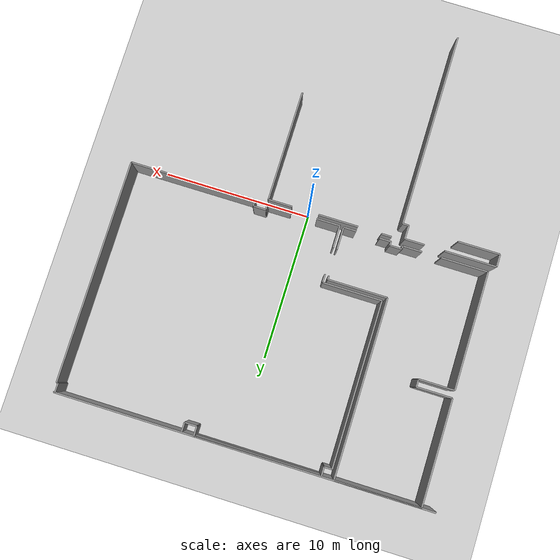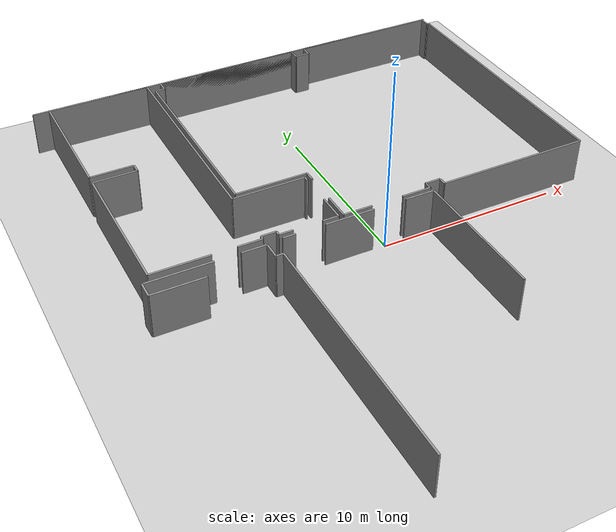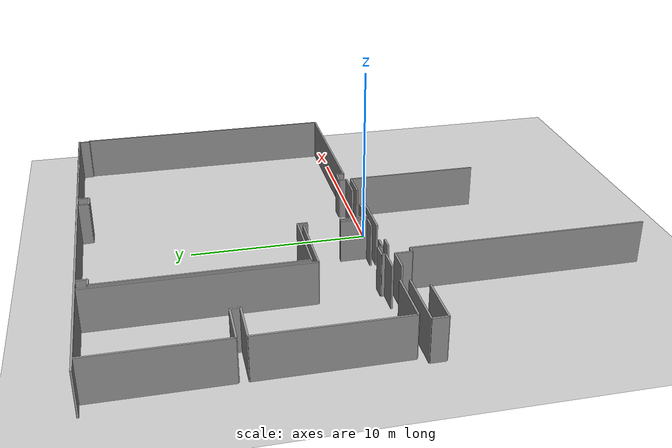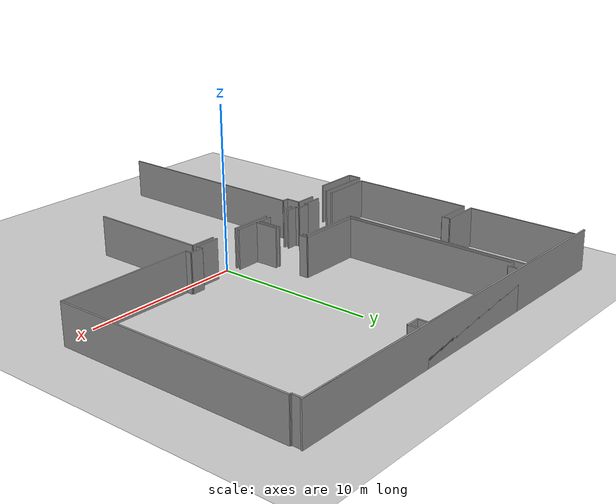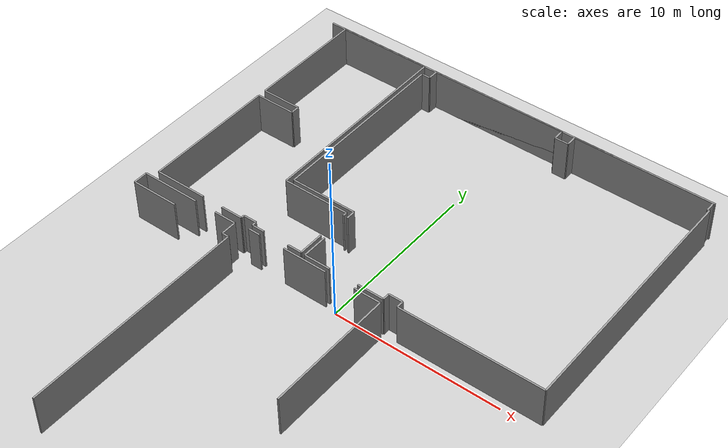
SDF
<sdf version="1.6">
 <world name="default">
  <model name="ground_plane">
   <static>1</static>
   <link name="link">
    <collision name="collision">
     <geometry><plane><normal>0 0 1</normal><size>100 100</size></plane></geometry>
     <surface><friction><ode><mu>100</mu><mu2>50</mu2></ode></friction></surface>
    </collision>
    <visual name="visual">
     <cast_shadows>0</cast_shadows>
     <geometry><plane><normal>0 0 1</normal><size>100 100</size></plane></geometry>
     <material>
      <script><uri>file://media/materials/scripts/gazebo.material</uri><name>Gazebo/Grey</name></script>
     </material>
    </visual>
   </link>
  </model>
  <model name="50045365">
   <static>1</static>
   <link name="Wall_0">
    <collision name="Wall_0_Collision">
     <geometry><box><size>7.93266301036 0.1 2.5</size></box></geometry>
     <pose>3.96633150518 0 1.25 0 0 0</pose>
    </collision>
    <visual name="Wall_0_Visual">
     <pose>3.96633150518 0 1.25 0 0 0</pose>
     <geometry><box><size>7.93266301036 0.1 2.5</size></box></geometry>
     <material>
      <script><uri>file://media/materials/scripts/gazebo.material</uri><name>Gazebo/Grey</name></script>
      <ambient>1 1 1 1</ambient>
     </material>
    </visual>
    <pose>0.938452163315 -15.5547938249 0 0 0 1.57079632679</pose>
   </link>
   <link name="Wall_1">
    <collision name="Wall_1_Collision">
     <geometry><box><size>2.3946272598 0.1 2.5</size></box></geometry>
     <pose>1.1973136299 0 1.25 0 0 0</pose>
    </collision>
    <visual name="Wall_1_Visual">
     <pose>1.1973136299 0 1.25 0 0 0</pose>
     <geometry><box><size>2.3946272598 0.1 2.5</size></box></geometry>
     <material>
      <script><uri>file://media/materials/scripts/gazebo.material</uri><name>Gazebo/Grey</name></script>
      <ambient>1 1 1 1</ambient>
     </material>
    </visual>
    <pose>0.938452163315 -7.62213081454 0 0 0 0.0</pose>
   </link>
   <link name="Wall_2">
    <collision name="Wall_2_Collision">
     <geometry><box><size>0.518357708714 0.1 2.5</size></box></geometry>
     <pose>0.259178854357 0 1.25 0 0 0</pose>
    </collision>
    <visual name="Wall_2_Visual">
     <pose>0.259178854357 0 1.25 0 0 0</pose>
     <geometry><box><size>0.518357708714 0.1 2.5</size></box></geometry>
     <material>
      <script><uri>file://media/materials/scripts/gazebo.material</uri><name>Gazebo/Grey</name></script>
      <ambient>1 1 1 1</ambient>
     </material>
    </visual>
    <pose>3.33307942312 -7.62213081454 0 0 0 1.57079632679</pose>
   </link>
   <link name="Wall_3">
    <collision name="Wall_3_Collision">
     <geometry><box><size>2.39031078611 0.1 2.5</size></box></geometry>
     <pose>1.19515539305 0 1.25 0 0 0</pose>
    </collision>
    <visual name="Wall_3_Visual">
     <pose>1.19515539305 0 1.25 0 0 0</pose>
     <geometry><box><size>2.39031078611 0.1 2.5</size></box></geometry>
     <material>
      <script><uri>file://media/materials/scripts/gazebo.material</uri><name>Gazebo/Grey</name></script>
      <ambient>1 1 1 1</ambient>
     </material>
    </visual>
    <pose>3.33307942312 -7.10377310583 0 0 0 3.14159265359</pose>
   </link>
   <link name="Wall_4">
    <collision name="Wall_4_Collision">
     <geometry><box><size>7.09412451757 0.1 2.5</size></box></geometry>
     <pose>3.54706225879 0 1.25 0 0 0</pose>
    </collision>
    <visual name="Wall_4_Visual">
     <pose>3.54706225879 0 1.25 0 0 0</pose>
     <geometry><box><size>7.09412451757 0.1 2.5</size></box></geometry>
     <material>
      <script><uri>file://media/materials/scripts/gazebo.material</uri><name>Gazebo/Grey</name></script>
      <ambient>1 1 1 1</ambient>
     </material>
    </visual>
    <pose>0.94276863701 -7.10377310583 0 0 0 1.57079632679</pose>
   </link>
   <link name="Wall_5">
    <collision name="Wall_5_Collision">
     <geometry><box><size>5.72135892748 0.1 2.5</size></box></geometry>
     <pose>2.86067946374 0 1.25 0 0 0</pose>
    </collision>
    <visual name="Wall_5_Visual">
     <pose>2.86067946374 0 1.25 0 0 0</pose>
     <geometry><box><size>5.72135892748 0.1 2.5</size></box></geometry>
     <material>
      <script><uri>file://media/materials/scripts/gazebo.material</uri><name>Gazebo/Grey</name></script>
      <ambient>1 1 1 1</ambient>
     </material>
    </visual>
    <pose>0.94276863701 -0.0096485882592 0 0 0 0.0</pose>
   </link>
   <link name="Wall_6">
    <collision name="Wall_6_Collision">
     <geometry><box><size>12.0124923827 0.1 2.5</size></box></geometry>
     <pose>6.00624619135 0 1.25 0 0 0</pose>
    </collision>
    <visual name="Wall_6_Visual">
     <pose>6.00624619135 0 1.25 0 0 0</pose>
     <geometry><box><size>12.0124923827 0.1 2.5</size></box></geometry>
     <material>
      <script><uri>file://media/materials/scripts/gazebo.material</uri><name>Gazebo/Grey</name></script>
      <ambient>1 1 1 1</ambient>
     </material>
    </visual>
    <pose>6.66412756449 -0.0096485882592 0 0 0 -1.57079632679</pose>
   </link>
   <link name="Wall_7">
    <collision name="Wall_7_Collision">
     <geometry><box><size>4.022191753 0.1 2.5</size></box></geometry>
     <pose>2.0110958765 0 1.25 0 0 0</pose>
    </collision>
    <visual name="Wall_7_Visual">
     <pose>2.0110958765 0 1.25 0 0 0</pose>
     <geometry><box><size>4.022191753 0.1 2.5</size></box></geometry>
     <material>
      <script><uri>file://media/materials/scripts/gazebo.material</uri><name>Gazebo/Grey</name></script>
      <ambient>1 1 1 1</ambient>
     </material>
    </visual>
    <pose>6.66412756449 -12.022140971 0 0 0 0.0</pose>
   </link>
   <link name="Wall_8">
    <collision name="Wall_8_Collision">
     <geometry><box><size>0.248451147674 0.1 2.5</size></box></geometry>
     <pose>0.124225573837 0 1.25 0 0 0</pose>
    </collision>
    <visual name="Wall_8_Visual">
     <pose>0.124225573837 0 1.25 0 0 0</pose>
     <geometry><box><size>0.248451147674 0.1 2.5</size></box></geometry>
     <material>
      <script><uri>file://media/materials/scripts/gazebo.material</uri><name>Gazebo/Grey</name></script>
      <ambient>1 1 1 1</ambient>
     </material>
    </visual>
    <pose>10.6863193175 -12.022140971 0 0 0 -1.57079632679</pose>
   </link>
   <link name="Wall_9">
    <collision name="Wall_9_Collision">
     <geometry><box><size>1.52346130408 0.1 2.5</size></box></geometry>
     <pose>0.761730652041 0 1.25 0 0 0</pose>
    </collision>
    <visual name="Wall_9_Visual">
     <pose>0.761730652041 0 1.25 0 0 0</pose>
     <geometry><box><size>1.52346130408 0.1 2.5</size></box></geometry>
     <material>
      <script><uri>file://media/materials/scripts/gazebo.material</uri><name>Gazebo/Grey</name></script>
      <ambient>1 1 1 1</ambient>
     </material>
    </visual>
    <pose>10.6863193175 -14.0826223847 0 0 0 -1.57079632679</pose>
   </link>
   <link name="Wall_10">
    <collision name="Wall_10_Collision">
     <geometry><box><size>0.86139041235 0.1 2.5</size></box></geometry>
     <pose>0.430695206175 0 1.25 0 0 0</pose>
    </collision>
    <visual name="Wall_10_Visual">
     <pose>0.430695206175 0 1.25 0 0 0</pose>
     <geometry><box><size>0.86139041235 0.1 2.5</size></box></geometry>
     <material>
      <script><uri>file://media/materials/scripts/gazebo.material</uri><name>Gazebo/Grey</name></script>
      <ambient>1 1 1 1</ambient>
     </material>
    </visual>
    <pose>10.6863193175 -15.6060836888 0 0 0 3.14159265359</pose>
   </link>
   <link name="Wall_11">
    <collision name="Wall_11_Collision">
     <geometry><box><size>0.749035141174 0.1 2.5</size></box></geometry>
     <pose>0.374517570587 0 1.25 0 0 0</pose>
    </collision>
    <visual name="Wall_11_Visual">
     <pose>0.374517570587 0 1.25 0 0 0</pose>
     <geometry><box><size>0.749035141174 0.1 2.5</size></box></geometry>
     <material>
      <script><uri>file://media/materials/scripts/gazebo.material</uri><name>Gazebo/Grey</name></script>
      <ambient>1 1 1 1</ambient>
     </material>
    </visual>
    <pose>8.23557789965 -15.6060836888 0 0 0 3.14159265359</pose>
   </link>
   <link name="Wall_12">
    <collision name="Wall_12_Collision">
     <geometry><box><size>0.266605728215 0.1 2.5</size></box></geometry>
     <pose>0.133302864107 0 1.25 0 0 0</pose>
    </collision>
    <visual name="Wall_12_Visual">
     <pose>0.133302864107 0 1.25 0 0 0</pose>
     <geometry><box><size>0.266605728215 0.1 2.5</size></box></geometry>
     <material>
      <script><uri>file://media/materials/scripts/gazebo.material</uri><name>Gazebo/Grey</name></script>
      <ambient>1 1 1 1</ambient>
     </material>
    </visual>
    <pose>7.48654275848 -15.6060836888 0 0 0 1.57079632679</pose>
   </link>
   <link name="Wall_13">
    <collision name="Wall_13_Collision">
     <geometry><box><size>0.812512695511 0.1 2.5</size></box></geometry>
     <pose>0.406256347755 0 1.25 0 0 0</pose>
    </collision>
    <visual name="Wall_13_Visual">
     <pose>0.406256347755 0 1.25 0 0 0</pose>
     <geometry><box><size>0.812512695511 0.1 2.5</size></box></geometry>
     <material>
      <script><uri>file://media/materials/scripts/gazebo.material</uri><name>Gazebo/Grey</name></script>
      <ambient>1 1 1 1</ambient>
     </material>
    </visual>
    <pose>7.48654275848 -15.3394779606 0 0 0 3.14159265359</pose>
   </link>
   <link name="Wall_14">
    <collision name="Wall_14_Collision">
     <geometry><box><size>0.215823684745 0.1 2.5</size></box></geometry>
     <pose>0.107911842373 0 1.25 0 0 0</pose>
    </collision>
    <visual name="Wall_14_Visual">
     <pose>0.107911842373 0 1.25 0 0 0</pose>
     <geometry><box><size>0.215823684745 0.1 2.5</size></box></geometry>
     <material>
      <script><uri>file://media/materials/scripts/gazebo.material</uri><name>Gazebo/Grey</name></script>
      <ambient>1 1 1 1</ambient>
     </material>
    </visual>
    <pose>6.67403006297 -15.3394779606 0 0 0 -1.57079632679</pose>
   </link>
   <link name="Wall_15">
    <collision name="Wall_15_Collision">
     <geometry><box><size>1.30763761934 0.1 2.5</size></box></geometry>
     <pose>0.653818809669 0 1.25 0 0 0</pose>
    </collision>
    <visual name="Wall_15_Visual">
     <pose>0.653818809669 0 1.25 0 0 0</pose>
     <geometry><box><size>1.30763761934 0.1 2.5</size></box></geometry>
     <material>
      <script><uri>file://media/materials/scripts/gazebo.material</uri><name>Gazebo/Grey</name></script>
      <ambient>1 1 1 1</ambient>
     </material>
    </visual>
    <pose>6.67403006297 -15.5553016453 0 0 0 3.14159265359</pose>
   </link>
   <link name="Wall_16">
    <collision name="Wall_16_Collision">
     <geometry><box><size>3.132998213 0.1 2.5</size></box></geometry>
     <pose>1.5664991065 0 1.25 0 0 0</pose>
    </collision>
    <visual name="Wall_16_Visual">
     <pose>1.5664991065 0 1.25 0 0 0</pose>
     <geometry><box><size>3.132998213 0.1 2.5</size></box></geometry>
     <material>
      <script><uri>file://media/materials/scripts/gazebo.material</uri><name>Gazebo/Grey</name></script>
      <ambient>1 1 1 1</ambient>
     </material>
    </visual>
    <pose>4.07145033516 -15.5553016453 0 0 0 3.1414305659</pose>
   </link>
   <link name="Wall_17">
    <collision name="Wall_17_Collision">
     <geometry><box><size>1.52346130408 0.1 2.5</size></box></geometry>
     <pose>0.761730652041 0 1.25 0 0 0</pose>
    </collision>
    <visual name="Wall_17_Visual">
     <pose>0.761730652041 0 1.25 0 0 0</pose>
     <geometry><box><size>1.52346130408 0.1 2.5</size></box></geometry>
     <material>
      <script><uri>file://media/materials/scripts/gazebo.material</uri><name>Gazebo/Grey</name></script>
      <ambient>1 1 1 1</ambient>
     </material>
    </visual>
    <pose>10.9524172253 -15.6314747105 0 0 0 1.57079632679</pose>
   </link>
   <link name="Wall_18">
    <collision name="Wall_18_Collision">
     <geometry><box><size>0.554793824904 0.1 2.5</size></box></geometry>
     <pose>0.277396912452 0 1.25 0 0 0</pose>
    </collision>
    <visual name="Wall_18_Visual">
     <pose>0.277396912452 0 1.25 0 0 0</pose>
     <geometry><box><size>0.554793824904 0.1 2.5</size></box></geometry>
     <material>
      <script><uri>file://media/materials/scripts/gazebo.material</uri><name>Gazebo/Grey</name></script>
      <ambient>1 1 1 1</ambient>
     </material>
    </visual>
    <pose>10.9524172253 -12.2957292301 0 0 0 1.57079632679</pose>
   </link>
   <link name="Wall_19">
    <collision name="Wall_19_Collision">
     <geometry><box><size>3.9974355068 0.1 2.5</size></box></geometry>
     <pose>1.9987177534 0 1.25 0 0 0</pose>
    </collision>
    <visual name="Wall_19_Visual">
     <pose>1.9987177534 0 1.25 0 0 0</pose>
     <geometry><box><size>3.9974355068 0.1 2.5</size></box></geometry>
     <material>
      <script><uri>file://media/materials/scripts/gazebo.material</uri><name>Gazebo/Grey</name></script>
      <ambient>1 1 1 1</ambient>
     </material>
    </visual>
    <pose>10.9524172253 -11.7409354052 0 0 0 3.14159265359</pose>
   </link>
   <link name="Wall_20">
    <collision name="Wall_20_Collision">
     <geometry><box><size>11.1117458867 0.1 2.5</size></box></geometry>
     <pose>5.55587294333 0 1.25 0 0 0</pose>
    </collision>
    <visual name="Wall_20_Visual">
     <pose>5.55587294333 0 1.25 0 0 0</pose>
     <geometry><box><size>11.1117458867 0.1 2.5</size></box></geometry>
     <material>
      <script><uri>file://media/materials/scripts/gazebo.material</uri><name>Gazebo/Grey</name></script>
      <ambient>1 1 1 1</ambient>
     </material>
    </visual>
    <pose>6.95498171846 -11.7409354052 0 0 0 1.57079632679</pose>
   </link>
   <link name="Wall_21">
    <collision name="Wall_21_Collision">
     <geometry><box><size>0.529910623603 0.1 2.5</size></box></geometry>
     <pose>0.264955311802 0 1.25 0 0 0</pose>
    </collision>
    <visual name="Wall_21_Visual">
     <pose>0.264955311802 0 1.25 0 0 0</pose>
     <geometry><box><size>0.529910623603 0.1 2.5</size></box></geometry>
     <material>
      <script><uri>file://media/materials/scripts/gazebo.material</uri><name>Gazebo/Grey</name></script>
      <ambient>1 1 1 1</ambient>
     </material>
    </visual>
    <pose>6.95498171846 -0.629189518586 0 0 0 0.0</pose>
   </link>
   <link name="Wall_22">
    <collision name="Wall_22_Collision">
     <geometry><box><size>0.629189518586 0.1 2.5</size></box></geometry>
     <pose>0.314594759293 0 1.25 0 0 0</pose>
    </collision>
    <visual name="Wall_22_Visual">
     <pose>0.314594759293 0 1.25 0 0 0</pose>
     <geometry><box><size>0.629189518586 0.1 2.5</size></box></geometry>
     <material>
      <script><uri>file://media/materials/scripts/gazebo.material</uri><name>Gazebo/Grey</name></script>
      <ambient>1 1 1 1</ambient>
     </material>
    </visual>
    <pose>7.48489234207 -0.629189518586 0 0 0 1.57079632679</pose>
   </link>
   <link name="Wall_23">
    <collision name="Wall_23_Collision">
     <geometry><box><size>8.40112736137 0.1 2.5</size></box></geometry>
     <pose>4.20056368068 0 1.25 0 0 0</pose>
    </collision>
    <visual name="Wall_23_Visual">
     <pose>4.20056368068 0 1.25 0 0 0</pose>
     <geometry><box><size>8.40112736137 0.1 2.5</size></box></geometry>
     <material>
      <script><uri>file://media/materials/scripts/gazebo.material</uri><name>Gazebo/Grey</name></script>
      <ambient>1 1 1 1</ambient>
     </material>
    </visual>
    <pose>7.48489234207 -0.0 0 0 0 0.0</pose>
   </link>
   <link name="Wall_24">
    <collision name="Wall_24_Collision">
     <geometry><box><size>0.651279707495 0.1 2.5</size></box></geometry>
     <pose>0.325639853748 0 1.25 0 0 0</pose>
    </collision>
    <visual name="Wall_24_Visual">
     <pose>0.325639853748 0 1.25 0 0 0</pose>
     <geometry><box><size>0.651279707495 0.1 2.5</size></box></geometry>
     <material>
      <script><uri>file://media/materials/scripts/gazebo.material</uri><name>Gazebo/Grey</name></script>
      <ambient>1 1 1 1</ambient>
     </material>
    </visual>
    <pose>15.8860197034 -0.0 0 0 0 -1.57079632679</pose>
   </link>
   <link name="Wall_25">
    <collision name="Wall_25_Collision">
     <geometry><box><size>0.816956124314 0.1 2.5</size></box></geometry>
     <pose>0.408478062157 0 1.25 0 0 0</pose>
    </collision>
    <visual name="Wall_25_Visual">
     <pose>0.408478062157 0 1.25 0 0 0</pose>
     <geometry><box><size>0.816956124314 0.1 2.5</size></box></geometry>
     <material>
      <script><uri>file://media/materials/scripts/gazebo.material</uri><name>Gazebo/Grey</name></script>
      <ambient>1 1 1 1</ambient>
     </material>
    </visual>
    <pose>15.8860197034 -0.651279707495 0 0 0 0.0</pose>
   </link>
   <link name="Wall_26">
    <collision name="Wall_26_Collision">
     <geometry><box><size>0.640234613041 0.1 2.5</size></box></geometry>
     <pose>0.32011730652 0 1.25 0 0 0</pose>
    </collision>
    <visual name="Wall_26_Visual">
     <pose>0.32011730652 0 1.25 0 0 0</pose>
     <geometry><box><size>0.640234613041 0.1 2.5</size></box></geometry>
     <material>
      <script><uri>file://media/materials/scripts/gazebo.material</uri><name>Gazebo/Grey</name></script>
      <ambient>1 1 1 1</ambient>
     </material>
    </visual>
    <pose>16.7029758277 -0.651279707495 0 0 0 1.57079632679</pose>
   </link>
   <link name="Wall_27">
    <collision name="Wall_27_Collision">
     <geometry><box><size>8.43413568962 0.1 2.5</size></box></geometry>
     <pose>4.21706784481 0 1.25 0 0 0</pose>
    </collision>
    <visual name="Wall_27_Visual">
     <pose>4.21706784481 0 1.25 0 0 0</pose>
     <geometry><box><size>8.43413568962 0.1 2.5</size></box></geometry>
     <material>
      <script><uri>file://media/materials/scripts/gazebo.material</uri><name>Gazebo/Grey</name></script>
      <ambient>1 1 1 1</ambient>
     </material>
    </visual>
    <pose>16.7029758277 -0.0110450944546 0 0 0 0.0</pose>
   </link>
   <link name="Wall_28">
    <collision name="Wall_28_Collision">
     <geometry><box><size>0.607099329677 0.1 2.5</size></box></geometry>
     <pose>0.303549664839 0 1.25 0 0 0</pose>
    </collision>
    <visual name="Wall_28_Visual">
     <pose>0.303549664839 0 1.25 0 0 0</pose>
     <geometry><box><size>0.607099329677 0.1 2.5</size></box></geometry>
     <material>
      <script><uri>file://media/materials/scripts/gazebo.material</uri><name>Gazebo/Grey</name></script>
      <ambient>1 1 1 1</ambient>
     </material>
    </visual>
    <pose>25.1371115174 -0.0110450944546 0 0 0 -1.57079632679</pose>
   </link>
   <link name="Wall_29">
    <collision name="Wall_29_Collision">
     <geometry><box><size>0.111847450741 0.1 2.5</size></box></geometry>
     <pose>0.0559237253707 0 1.25 0 0 0</pose>
    </collision>
    <visual name="Wall_29_Visual">
     <pose>0.0559237253707 0 1.25 0 0 0</pose>
     <geometry><box><size>0.111847450741 0.1 2.5</size></box></geometry>
     <material>
      <script><uri>file://media/materials/scripts/gazebo.material</uri><name>Gazebo/Grey</name></script>
      <ambient>1 1 1 1</ambient>
     </material>
    </visual>
    <pose>25.1371115174 -0.618144424132 0 0 0 0.0</pose>
   </link>
   <link name="Wall_30">
    <collision name="Wall_30_Collision">
     <geometry><box><size>15.0138381068 0.1 2.5</size></box></geometry>
     <pose>7.50691905342 0 1.25 0 0 0</pose>
    </collision>
    <visual name="Wall_30_Visual">
     <pose>7.50691905342 0 1.25 0 0 0</pose>
     <geometry><box><size>15.0138381068 0.1 2.5</size></box></geometry>
     <material>
      <script><uri>file://media/materials/scripts/gazebo.material</uri><name>Gazebo/Grey</name></script>
      <ambient>1 1 1 1</ambient>
     </material>
    </visual>
    <pose>25.2489589681 -0.618144424132 0 0 0 -1.57079632679</pose>
   </link>
   <link name="Wall_31">
    <collision name="Wall_31_Collision">
     <geometry><box><size>8.52389295145 0.1 2.5</size></box></geometry>
     <pose>4.26194647573 0 1.25 0 0 0</pose>
    </collision>
    <visual name="Wall_31_Visual">
     <pose>4.26194647573 0 1.25 0 0 0</pose>
     <geometry><box><size>8.52389295145 0.1 2.5</size></box></geometry>
     <material>
      <script><uri>file://media/materials/scripts/gazebo.material</uri><name>Gazebo/Grey</name></script>
      <ambient>1 1 1 1</ambient>
     </material>
    </visual>
    <pose>25.2489589681 -15.631982531 0 0 0 3.14159265359</pose>
   </link>
   <link name="Wall_32">
    <collision name="Wall_32_Collision">
     <geometry><box><size>0.419459679057 0.1 2.5</size></box></geometry>
     <pose>0.209729839529 0 1.25 0 0 0</pose>
    </collision>
    <visual name="Wall_32_Visual">
     <pose>0.209729839529 0 1.25 0 0 0</pose>
     <geometry><box><size>0.419459679057 0.1 2.5</size></box></geometry>
     <material>
      <script><uri>file://media/materials/scripts/gazebo.material</uri><name>Gazebo/Grey</name></script>
      <ambient>1 1 1 1</ambient>
     </material>
    </visual>
    <pose>16.7250660167 -15.631982531 0 0 0 1.57079632679</pose>
   </link>
   <link name="Wall_33">
    <collision name="Wall_33_Collision">
     <geometry><box><size>0.850091407678 0.1 2.5</size></box></geometry>
     <pose>0.425045703839 0 1.25 0 0 0</pose>
    </collision>
    <visual name="Wall_33_Visual">
     <pose>0.425045703839 0 1.25 0 0 0</pose>
     <geometry><box><size>0.850091407678 0.1 2.5</size></box></geometry>
     <material>
      <script><uri>file://media/materials/scripts/gazebo.material</uri><name>Gazebo/Grey</name></script>
      <ambient>1 1 1 1</ambient>
     </material>
    </visual>
    <pose>16.7250660167 -15.2125228519 0 0 0 3.14159265359</pose>
   </link>
   <link name="Wall_34">
    <collision name="Wall_34_Collision">
     <geometry><box><size>0.419459679057 0.1 2.5</size></box></geometry>
     <pose>0.209729839529 0 1.25 0 0 0</pose>
    </collision>
    <visual name="Wall_34_Visual">
     <pose>0.209729839529 0 1.25 0 0 0</pose>
     <geometry><box><size>0.419459679057 0.1 2.5</size></box></geometry>
     <material>
      <script><uri>file://media/materials/scripts/gazebo.material</uri><name>Gazebo/Grey</name></script>
      <ambient>1 1 1 1</ambient>
     </material>
    </visual>
    <pose>15.874974609 -15.2125228519 0 0 0 -1.57079632679</pose>
   </link>
   <link name="Wall_35">
    <collision name="Wall_35_Collision">
     <geometry><box><size>1.58973187081 0.1 2.5</size></box></geometry>
     <pose>0.794865935405 0 1.25 0 0 0</pose>
    </collision>
    <visual name="Wall_35_Visual">
     <pose>0.794865935405 0 1.25 0 0 0</pose>
     <geometry><box><size>1.58973187081 0.1 2.5</size></box></geometry>
     <material>
      <script><uri>file://media/materials/scripts/gazebo.material</uri><name>Gazebo/Grey</name></script>
      <ambient>1 1 1 1</ambient>
     </material>
    </visual>
    <pose>15.874974609 -15.631982531 0 0 0 3.14159265359</pose>
   </link>
   <link name="Wall_36">
    <collision name="Wall_36_Collision">
     <geometry><box><size>1.57106955191 0.1 2.5</size></box></geometry>
     <pose>0.785534775954 0 1.25 0 0 0</pose>
    </collision>
    <visual name="Wall_36_Visual">
     <pose>0.785534775954 0 1.25 0 0 0</pose>
     <geometry><box><size>1.57106955191 0.1 2.5</size></box></geometry>
     <material>
      <script><uri>file://media/materials/scripts/gazebo.material</uri><name>Gazebo/Grey</name></script>
      <ambient>1 1 1 1</ambient>
     </material>
    </visual>
    <pose>12.5234866951 -15.631982531 0 0 0 3.14126942128</pose>
   </link>
   <link name="Wall_42">
    <collision name="Wall_42_Collision">
     <geometry><box><size>0.694571399553 0.1 2.5</size></box></geometry>
     <pose>0.347285699777 0 1.25 0 0 0</pose>
    </collision>
    <visual name="Wall_42_Visual">
     <pose>0.347285699777 0 1.25 0 0 0</pose>
     <geometry><box><size>0.694571399553 0.1 2.5</size></box></geometry>
     <material>
      <script><uri>file://media/materials/scripts/gazebo.material</uri><name>Gazebo/Grey</name></script>
      <ambient>1 1 1 1</ambient>
     </material>
    </visual>
    <pose>7.52462929108 -15.9162350193 0 0 0 0.0</pose>
   </link>
   <link name="Wall_43">
    <collision name="Wall_43_Collision">
     <geometry><box><size>2.67875279301 0.1 2.5</size></box></geometry>
     <pose>1.33937639651 0 1.25 0 0 0</pose>
    </collision>
    <visual name="Wall_43_Visual">
     <pose>1.33937639651 0 1.25 0 0 0</pose>
     <geometry><box><size>2.67875279301 0.1 2.5</size></box></geometry>
     <material>
      <script><uri>file://media/materials/scripts/gazebo.material</uri><name>Gazebo/Grey</name></script>
      <ambient>1 1 1 1</ambient>
     </material>
    </visual>
    <pose>9.80982124721 -15.9162350193 0 0 0 0.0</pose>
   </link>
   <link name="Wall_44">
    <collision name="Wall_44_Collision">
     <geometry><box><size>1.61232988015 0.1 2.5</size></box></geometry>
     <pose>0.806164940077 0 1.25 0 0 0</pose>
    </collision>
    <visual name="Wall_44_Visual">
     <pose>0.806164940077 0 1.25 0 0 0</pose>
     <geometry><box><size>1.61232988015 0.1 2.5</size></box></geometry>
     <material>
      <script><uri>file://media/materials/scripts/gazebo.material</uri><name>Gazebo/Grey</name></script>
      <ambient>1 1 1 1</ambient>
     </material>
    </visual>
    <pose>14.2913365834 -15.9162350193 0 0 0 0.0</pose>
   </link>
   <link name="Wall_45">
    <collision name="Wall_45_Collision">
     <geometry><box><size>7.55382896608 0.1 2.5</size></box></geometry>
     <pose>3.77691448304 0 1.25 0 0 0</pose>
    </collision>
    <visual name="Wall_45_Visual">
     <pose>3.77691448304 0 1.25 0 0 0</pose>
     <geometry><box><size>7.55382896608 0.1 2.5</size></box></geometry>
     <material>
      <script><uri>file://media/materials/scripts/gazebo.material</uri><name>Gazebo/Grey</name></script>
      <ambient>1 1 1 1</ambient>
     </material>
    </visual>
    <pose>15.9036664635 -15.9162350193 0 0 0 -1.57079632679</pose>
   </link>
   <link name="Wall_86">
    <collision name="Wall_86_Collision">
     <geometry><box><size>2.82614767418 0.1 2.5</size></box></geometry>
     <pose>1.41307383709 0 1.25 0 0 0</pose>
    </collision>
    <visual name="Wall_86_Visual">
     <pose>1.41307383709 0 1.25 0 0 0</pose>
     <geometry><box><size>2.82614767418 0.1 2.5</size></box></geometry>
     <material>
      <script><uri>file://media/materials/scripts/gazebo.material</uri><name>Gazebo/Grey</name></script>
      <ambient>1 1 1 1</ambient>
     </material>
    </visual>
    <pose>3.32292301442 -16.8904885233 0 0 0 3.14159265359</pose>
   </link>
   <link name="Wall_87">
    <collision name="Wall_87_Collision">
     <geometry><box><size>0.84996445257 0.1 2.5</size></box></geometry>
     <pose>0.424982226285 0 1.25 0 0 0</pose>
    </collision>
    <visual name="Wall_87_Visual">
     <pose>0.424982226285 0 1.25 0 0 0</pose>
     <geometry><box><size>0.84996445257 0.1 2.5</size></box></geometry>
     <material>
      <script><uri>file://media/materials/scripts/gazebo.material</uri><name>Gazebo/Grey</name></script>
      <ambient>1 1 1 1</ambient>
     </material>
    </visual>
    <pose>0.49677534024 -16.8904885233 0 0 0 1.57079632679</pose>
   </link>
   <link name="Wall_88">
    <collision name="Wall_88_Collision">
     <geometry><box><size>3.49608978265 0.1 2.5</size></box></geometry>
     <pose>1.74804489133 0 1.25 0 0 0</pose>
    </collision>
    <visual name="Wall_88_Visual">
     <pose>1.74804489133 0 1.25 0 0 0</pose>
     <geometry><box><size>3.49608978265 0.1 2.5</size></box></geometry>
     <material>
      <script><uri>file://media/materials/scripts/gazebo.material</uri><name>Gazebo/Grey</name></script>
      <ambient>1 1 1 1</ambient>
     </material>
    </visual>
    <pose>0.49677534024 -16.0405240707 0 0 0 0.0</pose>
   </link>
   <link name="Wall_89">
    <collision name="Wall_89_Collision">
     <geometry><box><size>1.33302864107 0.1 2.5</size></box></geometry>
     <pose>0.666514320536 0 1.25 0 0 0</pose>
    </collision>
    <visual name="Wall_89_Visual">
     <pose>0.666514320536 0 1.25 0 0 0</pose>
     <geometry><box><size>1.33302864107 0.1 2.5</size></box></geometry>
     <material>
      <script><uri>file://media/materials/scripts/gazebo.material</uri><name>Gazebo/Grey</name></script>
      <ambient>1 1 1 1</ambient>
     </material>
    </visual>
    <pose>5.3410014219 -16.0405240707 0 0 0 0.0</pose>
   </link>
   <link name="Wall_90">
    <collision name="Wall_90_Collision">
     <geometry><box><size>0.927280113752 0.1 2.5</size></box></geometry>
     <pose>0.463640056876 0 1.25 0 0 0</pose>
    </collision>
    <visual name="Wall_90_Visual">
     <pose>0.463640056876 0 1.25 0 0 0</pose>
     <geometry><box><size>0.927280113752 0.1 2.5</size></box></geometry>
     <material>
      <script><uri>file://media/materials/scripts/gazebo.material</uri><name>Gazebo/Grey</name></script>
      <ambient>1 1 1 1</ambient>
     </material>
    </visual>
    <pose>6.67403006297 -16.0405240707 0 0 0 -1.57079632679</pose>
   </link>
   <link name="Wall_91">
    <collision name="Wall_91_Collision">
     <geometry><box><size>0.402447694495 0.1 2.5</size></box></geometry>
     <pose>0.201223847248 0 1.25 0 0 0</pose>
    </collision>
    <visual name="Wall_91_Visual">
     <pose>0.201223847248 0 1.25 0 0 0</pose>
     <geometry><box><size>0.402447694495 0.1 2.5</size></box></geometry>
     <material>
      <script><uri>file://media/materials/scripts/gazebo.material</uri><name>Gazebo/Grey</name></script>
      <ambient>1 1 1 1</ambient>
     </material>
    </visual>
    <pose>6.67403006297 -16.9678041844 0 0 0 0.0</pose>
   </link>
   <link name="Wall_92">
    <collision name="Wall_92_Collision">
     <geometry><box><size>13.2273258176 0.1 2.5</size></box></geometry>
     <pose>6.6136629088 0 1.25 0 0 0</pose>
    </collision>
    <visual name="Wall_92_Visual">
     <pose>6.6136629088 0 1.25 0 0 0</pose>
     <geometry><box><size>13.2273258176 0.1 2.5</size></box></geometry>
     <material>
      <script><uri>file://media/materials/scripts/gazebo.material</uri><name>Gazebo/Grey</name></script>
      <ambient>1 1 1 1</ambient>
     </material>
    </visual>
    <pose>7.07647775746 -16.9678041844 0 0 0 -1.57079632679</pose>
   </link>
   <link name="Wall_97">
    <collision name="Wall_97_Collision">
     <geometry><box><size>25.2489589681 0.1 2.5</size></box></geometry>
     <pose>12.6244794841 0 1.25 0 0 0</pose>
    </collision>
    <visual name="Wall_97_Visual">
     <pose>12.6244794841 0 1.25 0 0 0</pose>
     <geometry><box><size>25.2489589681 0.1 2.5</size></box></geometry>
     <material>
      <script><uri>file://media/materials/scripts/gazebo.material</uri><name>Gazebo/Grey</name></script>
      <ambient>1 1 1 1</ambient>
     </material>
    </visual>
   </link>
   <pose>-13.15 16.0348567946 0 0 0 0</pose>
  </model>
 </world>
</sdf>
